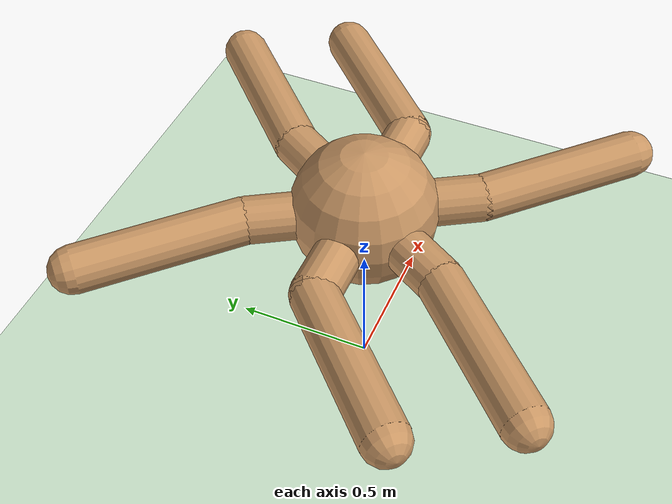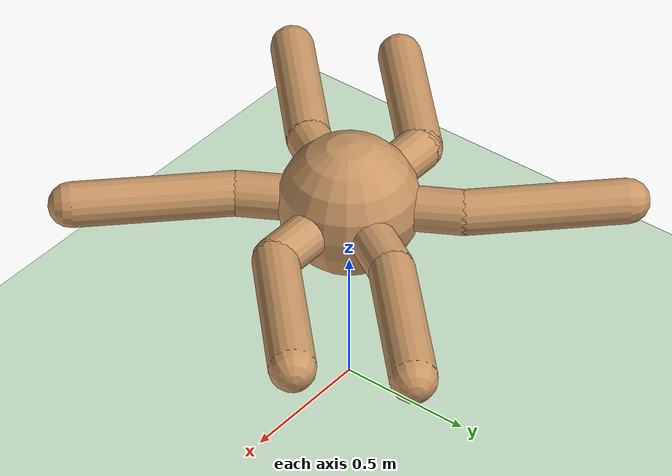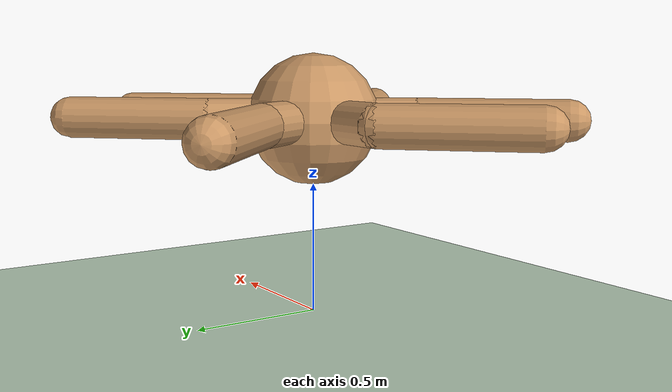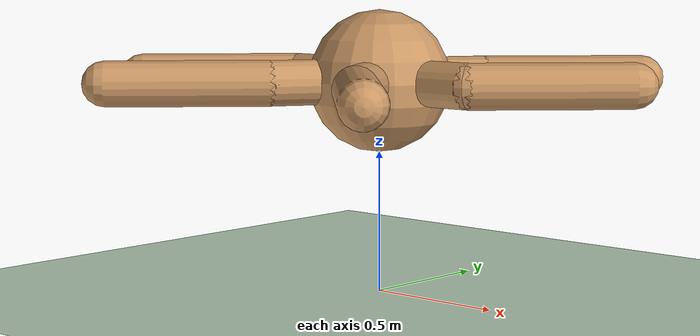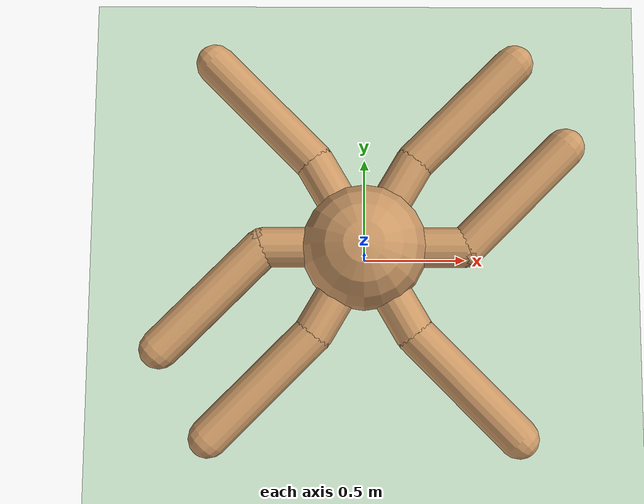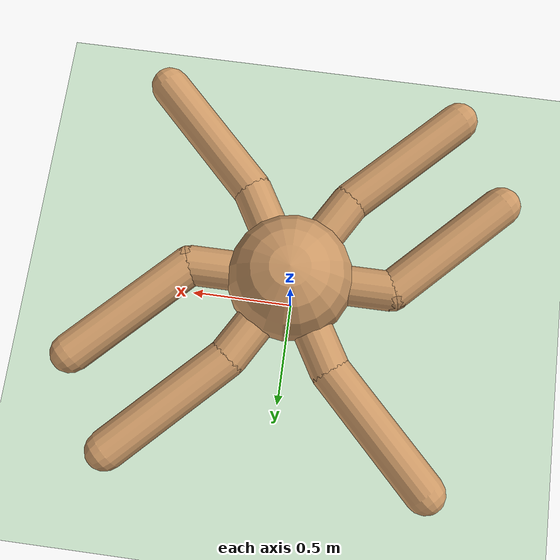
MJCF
<mujoco model="ant">
  <compiler angle="degree" coordinate="local" inertiafromgeom="true"/>
  <option integrator="RK4" timestep="0.002"/>
  <custom>
    <numeric data="0.0 0.0 0.55 1.0 0.0 0.0 0.0 0.0 1.0 0.0 -1.0 0.0 -1.0 0.0 1.0" name="init_qpos"/>
  </custom>
  <default>
    <joint armature="1" damping="1" limited="true"/>
    <geom conaffinity="0" condim="3" density="5.0" friction="1 0.5 0.5" margin="0.01" rgba="0.8 0.6 0.4 1"/>
  </default>
  <asset>
    <texture builtin="gradient" height="100" rgb1="1 1 1" rgb2="0 0 0" type="skybox" width="100"/>
    <texture builtin="flat" height="1278" mark="cross" markrgb="1 1 1" name="texgeom" random="0.01" rgb1="0.8 0.6 0.4" rgb2="0.8 0.6 0.4" type="cube" width="127"/>
    <texture builtin="checker" height="100" name="texplane" rgb1="0 0 0" rgb2="0.8 0.8 0.8" type="2d" width="100"/>
    <material name="MatPlane" reflectance="0.5" shininess="1" specular="1" texrepeat="60 60" texture="texplane"/>
    <material name="geom" texture="texgeom" texuniform="true"/>
  </asset>
  <worldbody>
    <light cutoff="100" diffuse="1 1 1" dir="-0 0 -1.3" directional="true" exponent="1" pos="0 0 1.3" specular=".1 .1 .1"/>
    <geom conaffinity="1" condim="3" material="MatPlane" name="floor" pos="0 0 0" rgba="0.8 0.9 0.8 1" size="40 40 40" type="plane"/>
    <body name="torso" pos="0 0 0.75">
      <geom name="torso_geom" pos="0 0 0" size="0.25" type="sphere"/>

      <joint armature="0" damping="0" limited="false" margin="0.01" name="root" pos="0 0 0" type="free"/>

		<!--다리1-->
	  <body name="first_leg" pos="0 0 0">
        <geom fromto="0.0 0.0 0.0 0.2 0 0.0" name="aux_1_geom" size="0.08" type="capsule"/>
        <body name="aux_1" pos="0.2 0 0">
          <joint axis="0 0 1" name="hip_1" pos="0.0 0.0 0.0" range="-30 30" type="hinge"/>
          <geom fromto="0.0 0.0 0.0 0.2 0 0.0" name="leg_1_geom" size="0.08" type="capsule"/>
          <body pos="0.2 0 0">
            <joint axis="-1 1 0" name="ankle_1" pos="0.0 0.0 0.0" range="30 70" type="hinge"/>
            <geom fromto="0.0 0.0 0.0 0.4 0.4 0.0" name="ankle_1_geom" size="0.08" type="capsule"/>
          </body>
        </body>
      </body>

		<!--다리2-->
      <body name="second_leg" pos="0 0 0">
        <geom fromto="0.0 0.0 0.0 0.1 0.17 0.0" name="aux_2_geom" size="0.08" type="capsule"/>
        <body name="aux_2" pos="0.1 0.17 0">
          <joint axis="0 0 1" name="hip_2" pos="0.0 0.0 0.0" range="-30 30" type="hinge"/>
          <geom fromto="0.0 0.0 0.0 0.1 0.17 0.0" name="leg_2_geom" size="0.08" type="capsule"/>
          <body pos="0.1 0.17 0">
            <joint axis="-1 1 0" name="ankle_2" pos="0.0 0.0 0.0" range="30 70" type="hinge"/>
            <geom fromto="0.0 0.0 0.0 0.4 0.4 0.0" name="ankle_2_geom" size="0.08" type="capsule"/>
          </body>
        </body>
      </body>

		<!--다리3-->
		<body name="third_leg" pos="0 0 0">
			<geom fromto="0.0 0.0 0.0 -0.1 0.17 0.0" name="aux_3_geom" size="0.08" type="capsule"/>
			<body name="aux_3" pos="-0.1 0.17 0">
				<joint axis="0 0 1" name="hip_3" pos="0.0 0.0 0.0" range="-30 30" type="hinge"/>
				<geom fromto="0.0 0.0 0.0 -0.1 0.17 0.0" name="leg_3_geom" size="0.08" type="capsule"/>
				<body pos="-0.1 0.17 0">
					<joint axis="1 1 0" name="ankle_3" pos="0.0 0.0 0.0" range="-70 -30" type="hinge"/>
					<geom fromto="0.0 0.0 0.0 -0.4 0.4 0.0" name="ankle_3_geom" size="0.08" type="capsule"/>
				</body>
			</body>
		</body>

		<!--다리4-->
		<body name="fourth_leg" pos="0 0 0">
			<geom fromto="0.0 0.0 0.0 -0.2 0 0.0" name="aux_4_geom" size="0.08" type="capsule"/>
			<body name="aux_4" pos="-0.2 0 0">
				<joint axis="0 0 1" name="hip_4" pos="0.0 0.0 0.0" range="-30 30" type="hinge"/>
				<geom fromto="0.0 0.0 0.0 -0.2 0 0.0" name="leg_4_geom" size="0.08" type="capsule"/>
				<body pos="-0.2 0 0">
					<joint axis="1 1 0" name="ankle_4" pos="0.0 0.0 0.0" range="-70 -30" type="hinge"/>
					<geom fromto="0.0 0.0 0.0 -0.4 -0.4 0.0" name="ankle_4_geom" size="0.08" type="capsule"/>
				</body>
			</body>
		</body>

		<!--다리5-->
		<body name="fifth_leg" pos="0 0 0">
        <geom fromto="0.0 0.0 0.0 -0.1 -0.17 0.0" name="aux_5_geom" size="0.08" type="capsule"/>
        <body name="aux_5" pos="-0.1 -0.17 0">
          <joint axis="0 0 1" name="hip_5" pos="0.0 0.0 0.0" range="-30 30" type="hinge"/>
          <geom fromto="0.0 0.0 0.0 -0.1 -0.17 0.0" name="leg_5_geom" size="0.08" type="capsule"/>
          <body pos="-0.1 -0.17 0">
            <joint axis="-1 1 0" name="ankle_5" pos="0.0 0.0 0.0" range="-70 -30" type="hinge"/>
            <geom fromto="0.0 0.0 0.0 -0.4 -0.4 0.0" name="ankle_5_geom" size="0.08" type="capsule"/>
          </body>
        </body>
      </body>

		<!--다리6-->
      <body name="sixth_back_leg" pos="0 0 0">
        <geom fromto="0.0 0.0 0.0 0.1 -0.17 0.0" name="aux_6_geom" size="0.08" type="capsule"/>
        <body name="aux_6" pos="0.1 -0.17 0">
          <joint axis="0 0 1" name="hip_6" pos="0.0 0.0 0.0" range="-30 30" type="hinge"/>
          <geom fromto="0.0 0.0 0.0 0.1 -0.17 0.0" name="leg_6_geom" size="0.08" type="capsule"/>
          <body pos="0.1 -0.17 0">
            <joint axis="1 1 0" name="ankle_6" pos="0.0 0.0 0.0" range="30 70" type="hinge"/>
            <geom fromto="0.0 0.0 0.0 0.4 -0.4 0.0" name="ankle_6_geom" size="0.08" type="capsule"/>
          </body>
        </body>
      </body>

  	</body>
  </worldbody>

  <actuator>
	  <motor ctrllimited="true" ctrlrange="-1.0 1.0" joint="hip_1" gear="150"/>
	  <motor ctrllimited="true" ctrlrange="-1.0 1.0" joint="ankle_1" gear="150"/>
	  <motor ctrllimited="true" ctrlrange="-1.0 1.0" joint="hip_2" gear="150"/>
	  <motor ctrllimited="true" ctrlrange="-1.0 1.0" joint="ankle_2" gear="150"/>
	  <motor ctrllimited="true" ctrlrange="-1.0 1.0" joint="hip_3" gear="150"/>
	  <motor ctrllimited="true" ctrlrange="-1.0 1.0" joint="ankle_3" gear="150"/>
	  <motor ctrllimited="true" ctrlrange="-1.0 1.0" joint="hip_4" gear="150"/>
	  <motor ctrllimited="true" ctrlrange="-1.0 1.0" joint="ankle_4" gear="150"/>
	  <motor ctrllimited="true" ctrlrange="-1.0 1.0" joint="hip_5" gear="150"/>
	  <motor ctrllimited="true" ctrlrange="-1.0 1.0" joint="ankle_5" gear="150"/>
	  <motor ctrllimited="true" ctrlrange="-1.0 1.0" joint="hip_6" gear="150"/>
	  <motor ctrllimited="true" ctrlrange="-1.0 1.0" joint="ankle_6" gear="150"/>
  </actuator>

  <sensor>
	  <touch name="touch_ankle_1_geom" site="ankle_1_geom"/>
	  <touch name="touch_ankle_2_geom" site="ankle_2_geom"/>
	  <touch name="touch_ankle_3_geom" site="ankle_3_geom"/>
	  <touch name="touch_ankle_4_geom" site="ankle_4_geom"/>
	  <touch name="touch_ankle_5_geom" site="ankle_5_geom"/>
	  <touch name="touch_ankle_6_geom" site="ankle_6_geom"/>
  </sensor>
</mujoco>
